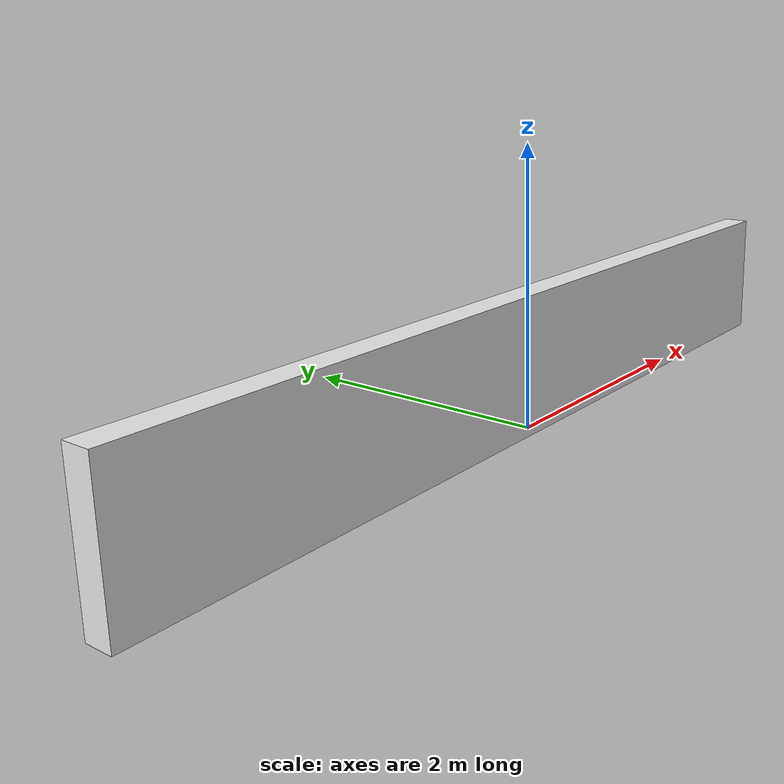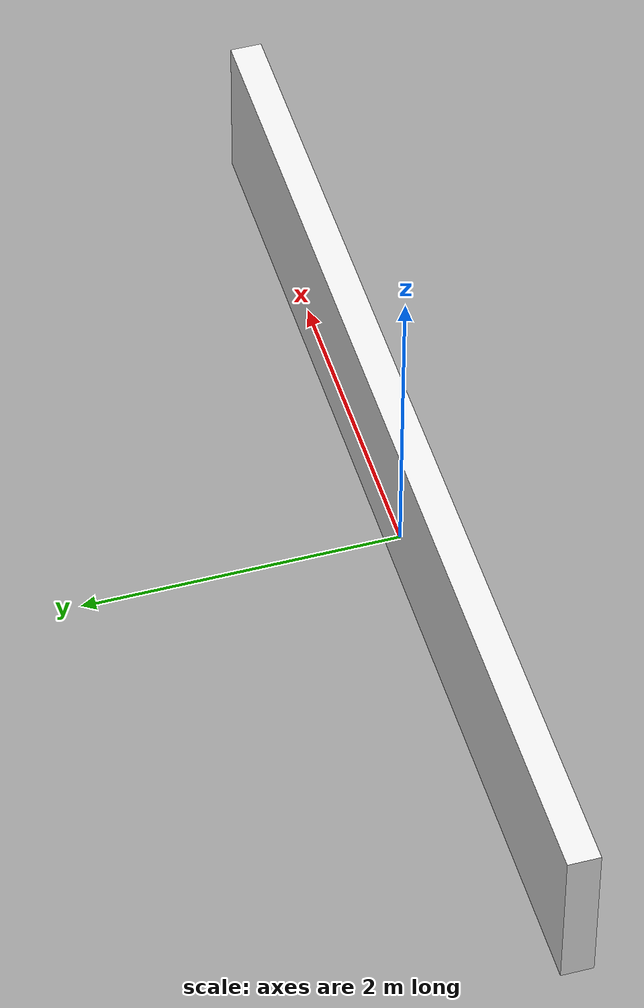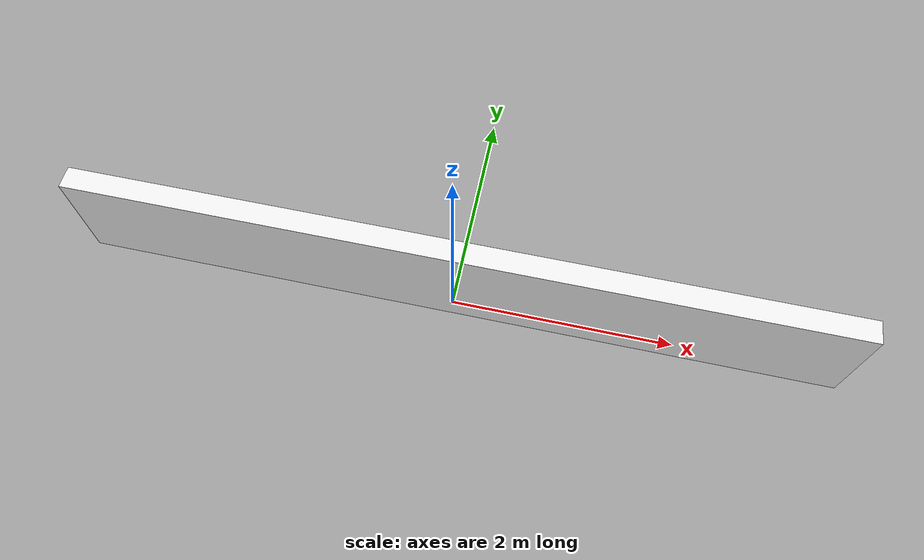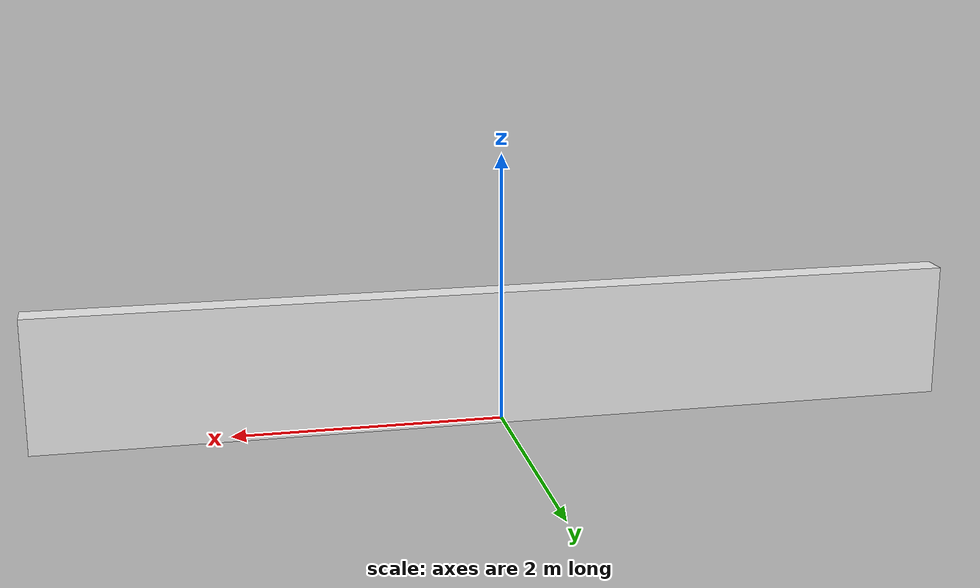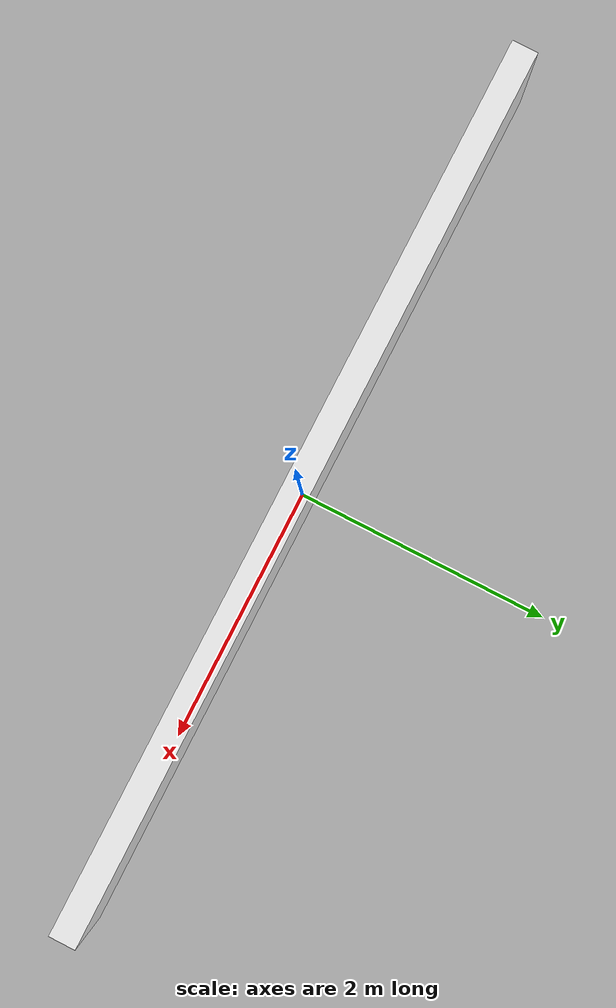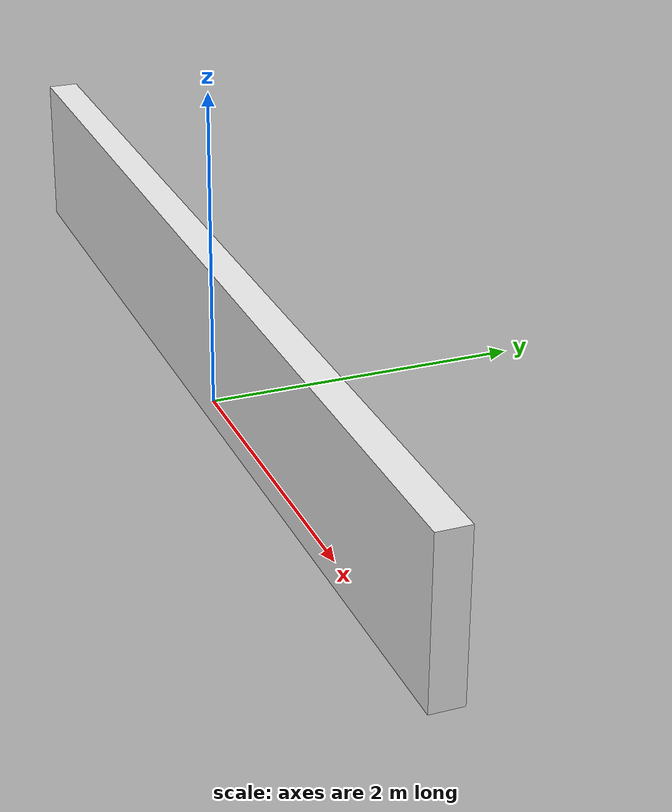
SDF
<?xml version="1.0" ?>
<sdf version="1.5">
  <model name="white_wall">
    <static>true</static>
    <link name="link">
      <pose>0 0 0.5 0 0 0</pose>
      <collision name="collision">
        <geometry>
          <box>
            <size>6.84 0.2 1</size>
          </box>
        </geometry>
      </collision>
      <visual name="visual">
        <cast_shadows>false</cast_shadows>
        <geometry>
          <box>
            <size>6.84 0.2 1</size>
          </box>
        </geometry>
        <material>
          <script>
            <uri>model://white_wall/materials/scripts</uri>
            <uri>model://white_wall/materials/textures</uri>
            <name>vrc/white_wall</name>
          </script>
        </material>
      </visual>
    </link>
  </model>
</sdf>
